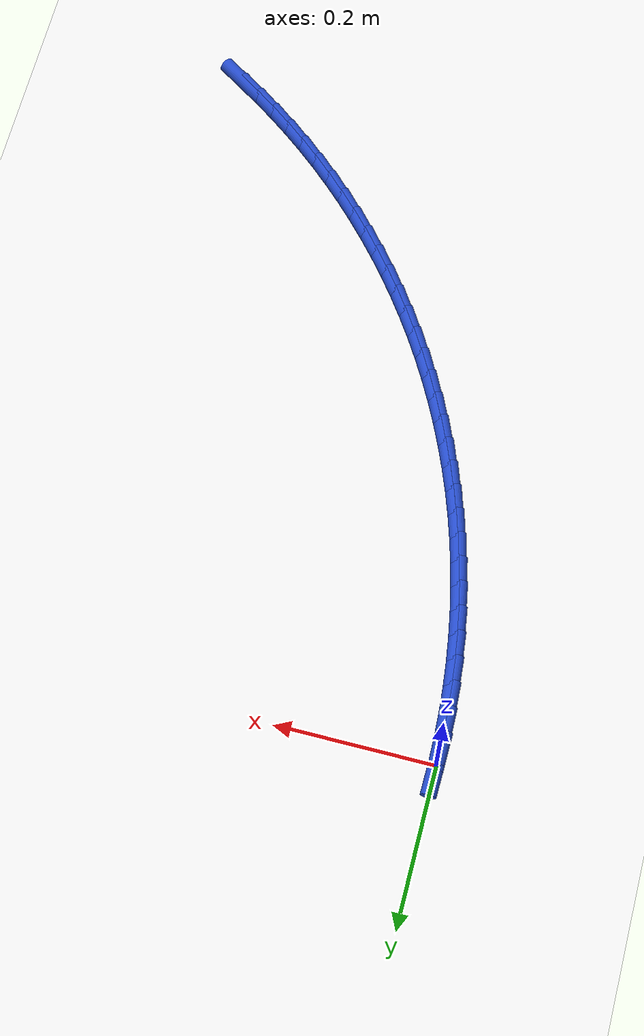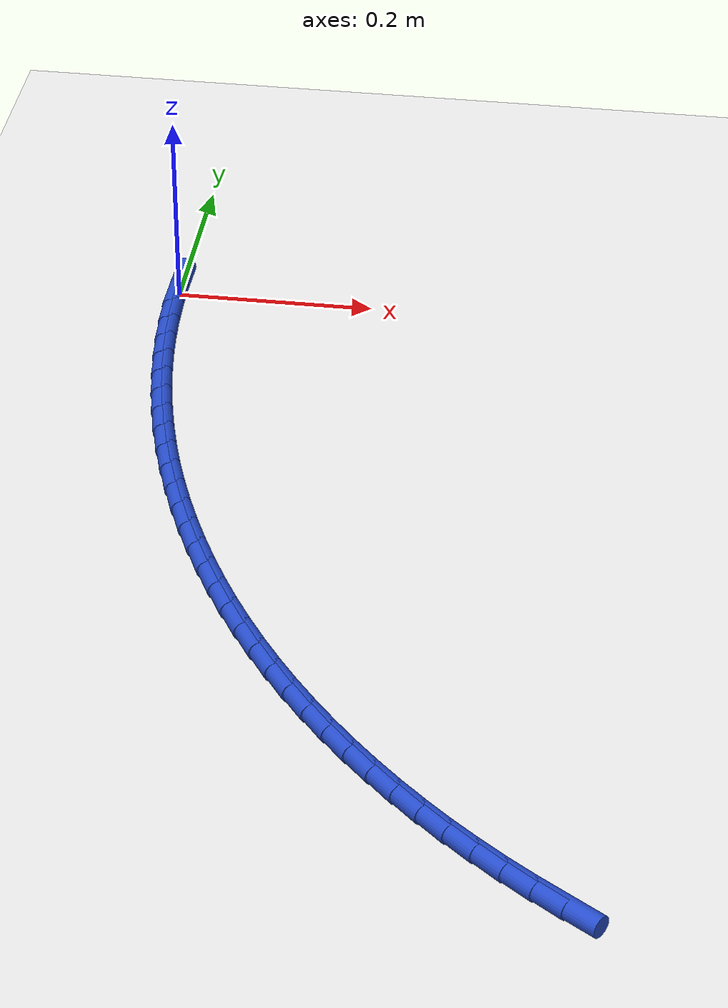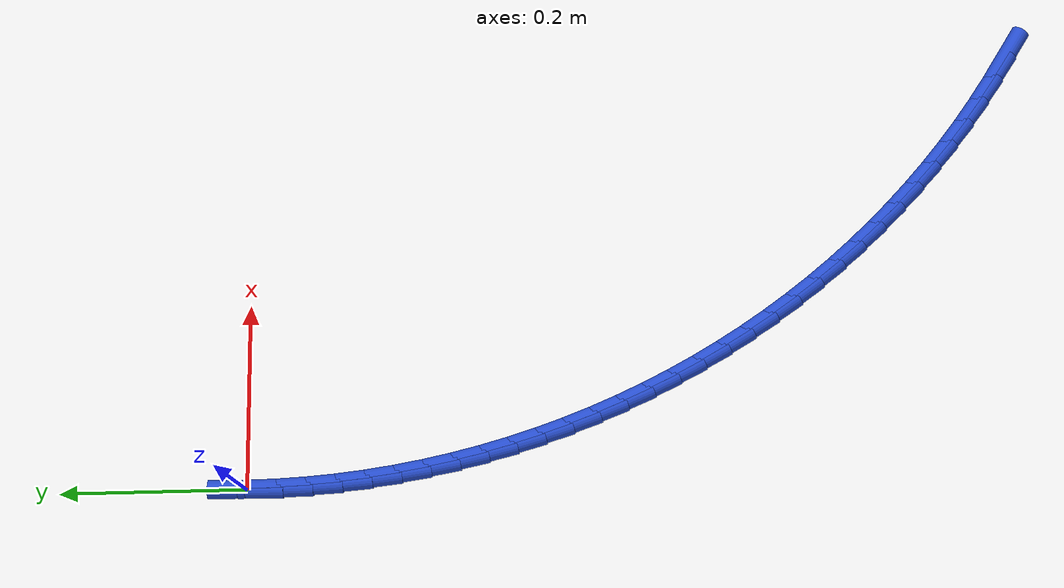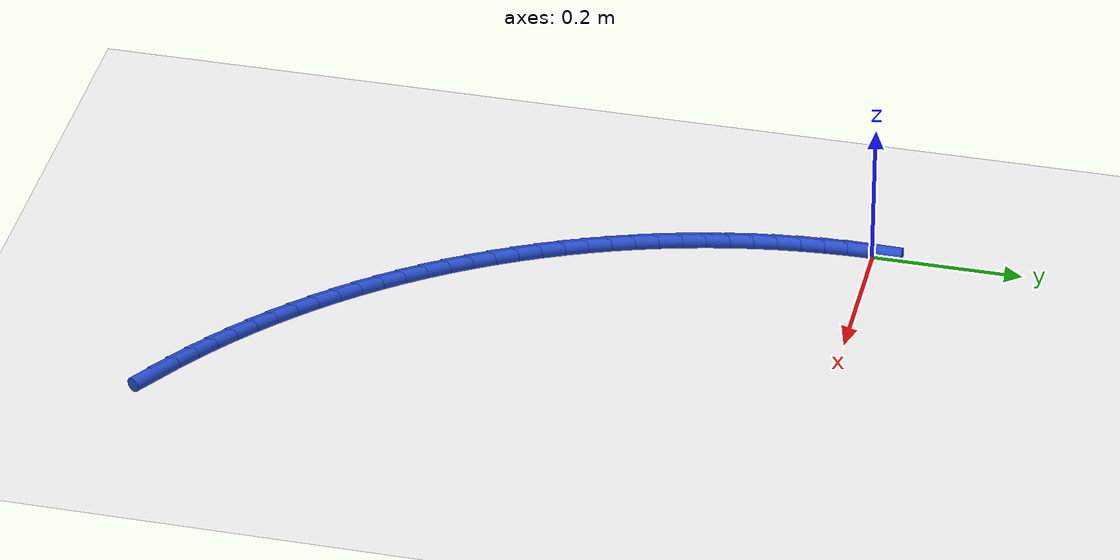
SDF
<sdf version="1.6">
 <world name="default">
  <model name="ground_plane">
   <static>1</static>
   <link name="link">
    <collision name="collision">
     <geometry><plane><normal>0 0 1</normal><size>100 100</size></plane></geometry>
     <surface><friction><ode><mu>100</mu><mu2>50</mu2></ode></friction></surface>
    </collision>
    <visual name="visual">
     <cast_shadows>0</cast_shadows>
     <geometry><plane><normal>0 0 1</normal><size>100 100</size></plane></geometry>
     <material>
      <script><uri>file://media/materials/scripts/gazebo.material</uri><name>Gazebo/WhiteGlow</name></script>
     </material>
    </visual>
   </link>
  </model>
  <model name="line">
   <static>1</static>
   <static>1</static>
   <static>1</static>
   <static>1</static>
   <static>1</static>
   <static>1</static>
   <static>1</static>
   <static>1</static>
   <static>1</static>
   <static>1</static>
   <static>1</static>
   <static>1</static>
   <static>1</static>
   <static>1</static>
   <static>1</static>
   <static>1</static>
   <static>1</static>
   <static>1</static>
   <static>1</static>
   <static>1</static>
   <static>1</static>
   <static>1</static>
   <static>1</static>
   <static>1</static>
   <static>1</static>
   <static>1</static>
   <static>1</static>
   <static>1</static>
   <static>1</static>
   <static>1</static>
   <static>1</static>
   <static>1</static>
   <static>1</static>
   <static>1</static>
   <static>1</static>
   <static>1</static>
   <static>1</static>
   <static>1</static>
   <static>1</static>
   <static>1</static>
   <static>1</static>
   <static>1</static>
   <static>1</static>
   <static>1</static>
   <static>1</static>
   <static>1</static>
   <static>1</static>
   <static>1</static>
   <static>1</static>
   <static>1</static>
   <static>1</static>
   <static>1</static>
   <static>1</static>
   <static>1</static>
   <static>1</static>
   <static>1</static>
   <static>1</static>
   <static>1</static>
   <static>1</static>
   <static>1</static>
   <static>1</static>
   <static>1</static>
   <static>1</static>
   <static>1</static>
   <static>1</static>
   <static>1</static>
   <static>1</static>
   <static>1</static>
   <static>1</static>
   <static>1</static>
   <static>1</static>
   <static>1</static>
   <static>1</static>
   <static>1</static>
   <static>1</static>
   <static>1</static>
   <static>1</static>
   <static>1</static>
   <static>1</static>
   <static>1</static>
   <static>1</static>
   <static>1</static>
   <static>1</static>
   <static>1</static>
   <static>1</static>
   <static>1</static>
   <static>1</static>
   <static>1</static>
   <static>1</static>
   <static>1</static>
   <static>1</static>
   <static>1</static>
   <static>1</static>
   <static>1</static>
   <static>1</static>
   <static>1</static>
   <static>1</static>
   <static>1</static>
   <static>1</static>
   <static>1</static>
   <static>1</static>
   <static>1</static>
   <static>1</static>
   <static>1</static>
   <static>1</static>
   <static>1</static>
   <static>1</static>
   <static>1</static>
   <static>1</static>
   <static>1</static>
   <static>1</static>
   <static>1</static>
   <static>1</static>
   <static>1</static>
   <static>1</static>
   <static>1</static>
   <static>1</static>
   <static>1</static>
   <static>1</static>
   <static>1</static>
   <static>1</static>
   <static>1</static>
   <static>1</static>
   <static>1</static>
   <static>1</static>
   <static>1</static>
   <static>1</static>
   <static>1</static>
   <static>1</static>
   <static>1</static>
   <static>1</static>
   <static>1</static>
   <static>1</static>
   <static>1</static>
   <static>1</static>
   <static>1</static>
   <static>1</static>
   <static>1</static>
   <static>1</static>
   <static>1</static>
   <static>1</static>
   <static>1</static>
   <static>1</static>
   <static>1</static>
   <static>1</static>
   <static>1</static>
   <static>1</static>
   <static>1</static>
   <static>1</static>
   <static>1</static>
   <static>1</static>
   <static>1</static>
   <static>1</static>
   <static>1</static>
   <static>1</static>
   <static>1</static>
   <static>1</static>
   <static>1</static>
   <static>1</static>
   <static>1</static>
   <static>1</static>
   <static>1</static>
   <static>1</static>
   <static>1</static>
   <static>1</static>
   <static>1</static>
   <static>1</static>
   <static>1</static>
   <static>1</static>
   <link name="link_168">
    <pose>0.4641768294182168 -0.8443176503073657 0.01 0 1.57 -0.5809653829443059</pose>
    <collision name="collision">
     <geometry><cylinder><radius>0.01</radius><length>0.08</length></cylinder></geometry>
    </collision>
    <visual name="visual">
     <material>
      <script><name>Gazebo/Blue</name><uri>file://media/materials/scripts/gazebo.material</uri></script>
     </material>
     <geometry><cylinder><radius>0.01</radius><length>0.08</length></cylinder></geometry>
    </visual>
   </link>
   <static>1</static>
   <link name="link_169">
    <pose>0.437917204922091 -0.8270769176921229 0.01 0 1.57 -0.6125046645061311</pose>
    <collision name="collision">
     <geometry><cylinder><radius>0.01</radius><length>0.08</length></cylinder></geometry>
    </collision>
    <visual name="visual">
     <material>
      <script><name>Gazebo/Blue</name><uri>file://media/materials/scripts/gazebo.material</uri></script>
     </material>
     <geometry><cylinder><radius>0.01</radius><length>0.08</length></cylinder></geometry>
    </visual>
   </link>
   <static>1</static>
   <link name="link_170">
    <pose>0.41221474770752675 -0.8090169943749475 0.01 0 1.57 -0.6441323969297831</pose>
    <collision name="collision">
     <geometry><cylinder><radius>0.01</radius><length>0.08</length></cylinder></geometry>
    </collision>
    <visual name="visual">
     <material>
      <script><name>Gazebo/Blue</name><uri>file://media/materials/scripts/gazebo.material</uri></script>
     </material>
     <geometry><cylinder><radius>0.01</radius><length>0.08</length></cylinder></geometry>
    </visual>
   </link>
   <static>1</static>
   <link name="link_171">
    <pose>0.38709624387644087 -0.7901533281783544 0.01 0 1.57 -0.6756716784916118</pose>
    <collision name="collision">
     <geometry><cylinder><radius>0.01</radius><length>0.08</length></cylinder></geometry>
    </collision>
    <visual name="visual">
     <material>
      <script><name>Gazebo/Blue</name><uri>file://media/materials/scripts/gazebo.material</uri></script>
     </material>
     <geometry><cylinder><radius>0.01</radius><length>0.08</length></cylinder></geometry>
    </visual>
   </link>
   <static>1</static>
   <link name="link_172">
    <pose>0.3625846625418045 -0.7705066205594348 0.01 0 1.57 -0.7071011123640734</pose>
    <collision name="collision">
     <geometry><cylinder><radius>0.01</radius><length>0.08</length></cylinder></geometry>
    </collision>
    <visual name="visual">
     <material>
      <script><name>Gazebo/Blue</name><uri>file://media/materials/scripts/gazebo.material</uri></script>
     </material>
     <geometry><cylinder><radius>0.01</radius><length>0.08</length></cylinder></geometry>
    </visual>
   </link>
   <static>1</static>
   <link name="link_173">
    <pose>0.338702018569352 -0.7500988863839226 0.01 0 1.57 -0.738451627178934</pose>
    <collision name="collision">
     <geometry><cylinder><radius>0.01</radius><length>0.08</length></cylinder></geometry>
    </collision>
    <visual name="visual">
     <material>
      <script><name>Gazebo/Blue</name><uri>file://media/materials/scripts/gazebo.material</uri></script>
     </material>
     <geometry><cylinder><radius>0.01</radius><length>0.08</length></cylinder></geometry>
    </visual>
   </link>
   <static>1</static>
   <link name="link_174">
    <pose>0.3154703268248184 -0.7289521405175533 0.01 0 1.57 -0.7697546094063747</pose>
    <collision name="collision">
     <geometry><cylinder><radius>0.01</radius><length>0.08</length></cylinder></geometry>
    </collision>
    <visual name="visual">
     <material>
      <script><name>Gazebo/Blue</name><uri>file://media/materials/scripts/gazebo.material</uri></script>
     </material>
     <geometry><cylinder><radius>0.01</radius><length>0.08</length></cylinder></geometry>
    </visual>
   </link>
   <static>1</static>
   <link name="link_175">
    <pose>0.29291160217393836 -0.7070883978260614 0.01 0 1.57 -0.8010417173885243</pose>
    <collision name="collision">
     <geometry><cylinder><radius>0.01</radius><length>0.08</length></cylinder></geometry>
    </collision>
    <visual name="visual">
     <material>
      <script><name>Gazebo/Blue</name><uri>file://media/materials/scripts/gazebo.material</uri></script>
     </material>
     <geometry><cylinder><radius>0.01</radius><length>0.08</length></cylinder></geometry>
    </visual>
   </link>
   <static>1</static>
   <link name="link_176">
    <pose>0.2710478594824462 -0.684529673175181 0.01 0 1.57 -0.8323446996159645</pose>
    <collision name="collision">
     <geometry><cylinder><radius>0.01</radius><length>0.08</length></cylinder></geometry>
    </collision>
    <visual name="visual">
     <material>
      <script><name>Gazebo/Blue</name><uri>file://media/materials/scripts/gazebo.material</uri></script>
     </material>
     <geometry><cylinder><radius>0.01</radius><length>0.08</length></cylinder></geometry>
    </visual>
   </link>
   <static>1</static>
   <link name="link_177">
    <pose>0.2499011136160769 -0.6612979814306473 0.01 0 1.57 -0.8636952144308243</pose>
    <collision name="collision">
     <geometry><cylinder><radius>0.01</radius><length>0.08</length></cylinder></geometry>
    </collision>
    <visual name="visual">
     <material>
      <script><name>Gazebo/Blue</name><uri>file://media/materials/scripts/gazebo.material</uri></script>
     </material>
     <geometry><cylinder><radius>0.01</radius><length>0.08</length></cylinder></geometry>
    </visual>
   </link>
   <static>1</static>
   <link name="link_178">
    <pose>0.22949337944056505 -0.6374153374581951 0.01 0 1.57 -0.8951246483032829</pose>
    <collision name="collision">
     <geometry><cylinder><radius>0.01</radius><length>0.08</length></cylinder></geometry>
    </collision>
    <visual name="visual">
     <material>
      <script><name>Gazebo/Blue</name><uri>file://media/materials/scripts/gazebo.material</uri></script>
     </material>
     <geometry><cylinder><radius>0.01</radius><length>0.08</length></cylinder></geometry>
    </visual>
   </link>
   <static>1</static>
   <link name="link_179">
    <pose>0.20984667182164526 -0.6129037561235586 0.01 0 1.57 -0.9266639298651131</pose>
    <collision name="collision">
     <geometry><cylinder><radius>0.01</radius><length>0.08</length></cylinder></geometry>
    </collision>
    <visual name="visual">
     <material>
      <script><name>Gazebo/Blue</name><uri>file://media/materials/scripts/gazebo.material</uri></script>
     </material>
     <geometry><cylinder><radius>0.01</radius><length>0.08</length></cylinder></geometry>
    </visual>
   </link>
   <static>1</static>
   <link name="link_180">
    <pose>0.19098300562505222 -0.5877852522924728 0.01 0 1.57 -0.9582916622887657</pose>
    <collision name="collision">
     <geometry><cylinder><radius>0.01</radius><length>0.08</length></cylinder></geometry>
    </collision>
    <visual name="visual">
     <material>
      <script><name>Gazebo/Blue</name><uri>file://media/materials/scripts/gazebo.material</uri></script>
     </material>
     <geometry><cylinder><radius>0.01</radius><length>0.08</length></cylinder></geometry>
    </visual>
   </link>
   <static>1</static>
   <link name="link_181">
    <pose>0.17292308230787676 -0.5620827950779085 0.01 0 1.57 -0.989830943850593</pose>
    <collision name="collision">
     <geometry><cylinder><radius>0.01</radius><length>0.08</length></cylinder></geometry>
    </collision>
    <visual name="visual">
     <material>
      <script><name>Gazebo/Blue</name><uri>file://media/materials/scripts/gazebo.material</uri></script>
     </material>
     <geometry><cylinder><radius>0.01</radius><length>0.08</length></cylinder></geometry>
    </visual>
   </link>
   <static>1</static>
   <link name="link_182">
    <pose>0.15568234969263411 -0.5358231705817829 0.01 0 1.57 -1.0212603777230536</pose>
    <collision name="collision">
     <geometry><cylinder><radius>0.01</radius><length>0.08</length></cylinder></geometry>
    </collision>
    <visual name="visual">
     <material>
      <script><name>Gazebo/Blue</name><uri>file://media/materials/scripts/gazebo.material</uri></script>
     </material>
     <geometry><cylinder><radius>0.01</radius><length>0.08</length></cylinder></geometry>
    </visual>
   </link>
   <static>1</static>
   <link name="link_183">
    <pose>0.13927494219319572 -0.5090341191532486 0.01 0 1.57 -1.052610892537913</pose>
    <collision name="collision">
     <geometry><cylinder><radius>0.01</radius><length>0.08</length></cylinder></geometry>
    </collision>
    <visual name="visual">
     <material>
      <script><name>Gazebo/Blue</name><uri>file://media/materials/scripts/gazebo.material</uri></script>
     </material>
     <geometry><cylinder><radius>0.01</radius><length>0.08</length></cylinder></geometry>
    </visual>
   </link>
   <static>1</static>
   <link name="link_184">
    <pose>0.12371499422343309 -0.48174338114145954 0.01 0 1.57 -1.083913874765355</pose>
    <collision name="collision">
     <geometry><cylinder><radius>0.01</radius><length>0.08</length></cylinder></geometry>
    </collision>
    <visual name="visual">
     <material>
      <script><name>Gazebo/Blue</name><uri>file://media/materials/scripts/gazebo.material</uri></script>
     </material>
     <geometry><cylinder><radius>0.01</radius><length>0.08</length></cylinder></geometry>
    </visual>
   </link>
   <static>1</static>
   <link name="link_185">
    <pose>0.10901664019721753 -0.45397869689556847 0.01 0 1.57 -1.1152009827475025</pose>
    <collision name="collision">
     <geometry><cylinder><radius>0.01</radius><length>0.08</length></cylinder></geometry>
    </collision>
    <visual name="visual">
     <material>
      <script><name>Gazebo/Blue</name><uri>file://media/materials/scripts/gazebo.material</uri></script>
     </material>
     <geometry><cylinder><radius>0.01</radius><length>0.08</length></cylinder></geometry>
    </visual>
   </link>
   <static>1</static>
   <link name="link_186">
    <pose>0.09519401452842052 -0.42576780676472864 0.01 0 1.57 -1.1465039649749422</pose>
    <collision name="collision">
     <geometry><cylinder><radius>0.01</radius><length>0.08</length></cylinder></geometry>
    </collision>
    <visual name="visual">
     <material>
      <script><name>Gazebo/Blue</name><uri>file://media/materials/scripts/gazebo.material</uri></script>
     </material>
     <geometry><cylinder><radius>0.01</radius><length>0.08</length></cylinder></geometry>
    </visual>
   </link>
   <static>1</static>
   <link name="link_187">
    <pose>0.08226125163091347 -0.3971384510980934 0.01 0 1.57 -1.1778544797898052</pose>
    <collision name="collision">
     <geometry><cylinder><radius>0.01</radius><length>0.08</length></cylinder></geometry>
    </collision>
    <visual name="visual">
     <material>
      <script><name>Gazebo/Blue</name><uri>file://media/materials/scripts/gazebo.material</uri></script>
     </material>
     <geometry><cylinder><radius>0.01</radius><length>0.08</length></cylinder></geometry>
    </visual>
   </link>
   <static>1</static>
   <link name="link_188">
    <pose>0.0702324859185678 -0.368118370244816 0.01 0 1.57 -1.2092839136622617</pose>
    <collision name="collision">
     <geometry><cylinder><radius>0.01</radius><length>0.08</length></cylinder></geometry>
    </collision>
    <visual name="visual">
     <material>
      <script><name>Gazebo/Blue</name><uri>file://media/materials/scripts/gazebo.material</uri></script>
     </material>
     <geometry><cylinder><radius>0.01</radius><length>0.08</length></cylinder></geometry>
    </visual>
   </link>
   <static>1</static>
   <link name="link_189">
    <pose>0.059121851805254914 -0.3387353045540493 0.01 0 1.57 -1.2408231952240933</pose>
    <collision name="collision">
     <geometry><cylinder><radius>0.01</radius><length>0.08</length></cylinder></geometry>
    </collision>
    <visual name="visual">
     <material>
      <script><name>Gazebo/Blue</name><uri>file://media/materials/scripts/gazebo.material</uri></script>
     </material>
     <geometry><cylinder><radius>0.01</radius><length>0.08</length></cylinder></geometry>
    </visual>
   </link>
   <static>1</static>
   <link name="link_190">
    <pose>0.048943483704846275 -0.30901699437494695 0.01 0 1.57 -1.2724509276477423</pose>
    <collision name="collision">
     <geometry><cylinder><radius>0.01</radius><length>0.08</length></cylinder></geometry>
    </collision>
    <visual name="visual">
     <material>
      <script><name>Gazebo/Blue</name><uri>file://media/materials/scripts/gazebo.material</uri></script>
     </material>
     <geometry><cylinder><radius>0.01</radius><length>0.08</length></cylinder></geometry>
    </visual>
   </link>
   <static>1</static>
   <link name="link_191">
    <pose>0.03970997202675106 -0.2789916817341227 0.01 0 1.57 -1.303990209209574</pose>
    <collision name="collision">
     <geometry><cylinder><radius>0.01</radius><length>0.08</length></cylinder></geometry>
    </collision>
    <visual name="visual">
     <material>
      <script><name>Gazebo/Blue</name><uri>file://media/materials/scripts/gazebo.material</uri></script>
     </material>
     <geometry><cylinder><radius>0.01</radius><length>0.08</length></cylinder></geometry>
    </visual>
   </link>
   <static>1</static>
   <link name="link_192">
    <pose>0.031427731162529865 -0.24868961536803477 0.01 0 1.57 -1.3354196430820295</pose>
    <collision name="collision">
     <geometry><cylinder><radius>0.01</radius><length>0.08</length></cylinder></geometry>
    </collision>
    <visual name="visual">
     <material>
      <script><name>Gazebo/Blue</name><uri>file://media/materials/scripts/gazebo.material</uri></script>
     </material>
     <geometry><cylinder><radius>0.01</radius><length>0.08</length></cylinder></geometry>
    </visual>
   </link>
   <static>1</static>
   <link name="link_193">
    <pose>0.02410163149928049 -0.21814154569059999 0.01 0 1.57 -1.366770157896892</pose>
    <collision name="collision">
     <geometry><cylinder><radius>0.01</radius><length>0.08</length></cylinder></geometry>
    </collision>
    <visual name="visual">
     <material>
      <script><name>Gazebo/Blue</name><uri>file://media/materials/scripts/gazebo.material</uri></script>
     </material>
     <geometry><cylinder><radius>0.01</radius><length>0.08</length></cylinder></geometry>
    </visual>
   </link>
   <static>1</static>
   <link name="link_194">
    <pose>0.01773654342410135 -0.18737822311573749 0.01 0 1.57 -1.3980731401243334</pose>
    <collision name="collision">
     <geometry><cylinder><radius>0.01</radius><length>0.08</length></cylinder></geometry>
    </collision>
    <visual name="visual">
     <material>
      <script><name>Gazebo/Blue</name><uri>file://media/materials/scripts/gazebo.material</uri></script>
     </material>
     <geometry><cylinder><radius>0.01</radius><length>0.08</length></cylinder></geometry>
    </visual>
   </link>
   <static>1</static>
   <link name="link_195">
    <pose>0.012337337324090626 -0.15643039805736536 0.01 0 1.57 -1.42936024810648</pose>
    <collision name="collision">
     <geometry><cylinder><radius>0.01</radius><length>0.08</length></cylinder></geometry>
    </collision>
    <visual name="visual">
     <material>
      <script><name>Gazebo/Blue</name><uri>file://media/materials/scripts/gazebo.material</uri></script>
     </material>
     <geometry><cylinder><radius>0.01</radius><length>0.08</length></cylinder></geometry>
    </visual>
   </link>
   <static>1</static>
   <link name="link_196">
    <pose>0.007908883586346513 -0.12532882092940187 0.01 0 1.57 -1.460663230333921</pose>
    <collision name="collision">
     <geometry><cylinder><radius>0.01</radius><length>0.08</length></cylinder></geometry>
    </collision>
    <visual name="visual">
     <material>
      <script><name>Gazebo/Blue</name><uri>file://media/materials/scripts/gazebo.material</uri></script>
     </material>
     <geometry><cylinder><radius>0.01</radius><length>0.08</length></cylinder></geometry>
    </visual>
   </link>
   <static>1</static>
   <link name="link_197">
    <pose>0.004456052597967201 -0.09410424214576535 0.01 0 1.57 -1.4920137451487843</pose>
    <collision name="collision">
     <geometry><cylinder><radius>0.01</radius><length>0.08</length></cylinder></geometry>
    </collision>
    <visual name="visual">
     <material>
      <script><name>Gazebo/Blue</name><uri>file://media/materials/scripts/gazebo.material</uri></script>
     </material>
     <geometry><cylinder><radius>0.01</radius><length>0.08</length></cylinder></geometry>
    </visual>
   </link>
   <static>1</static>
   <link name="link_198">
    <pose>0.001983714746050885 -0.06278741212037406 0.01 0 1.57 -1.52344317902124</pose>
    <collision name="collision">
     <geometry><cylinder><radius>0.01</radius><length>0.08</length></cylinder></geometry>
    </collision>
    <visual name="visual">
     <material>
      <script><name>Gazebo/Blue</name><uri>file://media/materials/scripts/gazebo.material</uri></script>
     </material>
     <geometry><cylinder><radius>0.01</radius><length>0.08</length></cylinder></geometry>
    </visual>
   </link>
   <static>1</static>
   <link name="link_199">
    <pose>0.0004967404176957537 -0.03140908126714624 0.01 0 1.57 -1.5549824605830724</pose>
    <collision name="collision">
     <geometry><cylinder><radius>0.01</radius><length>0.08</length></cylinder></geometry>
    </collision>
    <visual name="visual">
     <material>
      <script><name>Gazebo/Blue</name><uri>file://media/materials/scripts/gazebo.material</uri></script>
     </material>
     <geometry><cylinder><radius>0.01</radius><length>0.08</length></cylinder></geometry>
    </visual>
   </link>
   <static>1</static>
   <link name="link_200">
    <pose>0.0 -1.3877787807814457e-16 0.01 0 1.57 1.5549307858758301</pose>
    <collision name="collision">
     <geometry><cylinder><radius>0.01</radius><length>0.08</length></cylinder></geometry>
    </collision>
    <visual name="visual">
     <material>
      <script><name>Gazebo/Blue</name><uri>file://media/materials/scripts/gazebo.material</uri></script>
     </material>
     <geometry><cylinder><radius>0.01</radius><length>0.08</length></cylinder></geometry>
    </visual>
   </link>
   <static>1</static>
  </model>
 </world>
</sdf>
